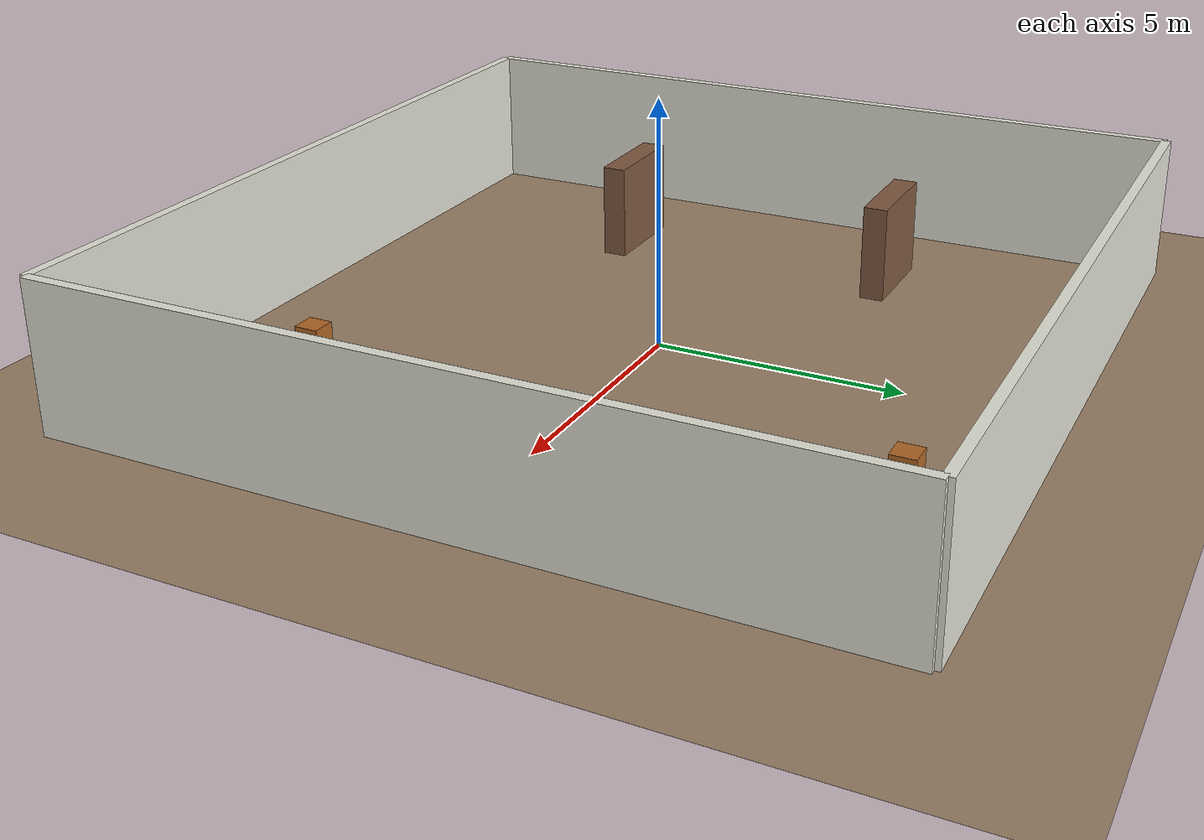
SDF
<?xml version="1.0" ?>
<sdf version="1.8">
  <world name="warehouse">

    <!-- Physics -->
    <physics name="1ms" type="ignored">
      <max_step_size>0.001</max_step_size>
      <real_time_factor>1.0</real_time_factor>
    </physics>

    <!-- Plugins -->
    <plugin
      filename="ignition-gazebo-physics-system"
      name="ignition::gazebo::systems::Physics">
    </plugin>
    <plugin
      filename="ignition-gazebo-user-commands-system"
      name="ignition::gazebo::systems::UserCommands">
    </plugin>
    <plugin
      filename="ignition-gazebo-scene-broadcaster-system"
      name="ignition::gazebo::systems::SceneBroadcaster">
    </plugin>
    <plugin
      filename="ignition-gazebo-sensors-system"
      name="ignition::gazebo::systems::Sensors">
      <render_engine>ogre2</render_engine>
    </plugin>
    <plugin
      filename="ignition-gazebo-imu-system"
      name="ignition::gazebo::systems::Imu">
    </plugin>

    <!-- Scene -->
    <scene>
      <ambient>0.6 0.6 0.6 1.0</ambient>
      <background>0.8 0.8 0.8 1</background>
      <shadows>true</shadows>
    </scene>

    <!-- Lighting -->
    <light type="directional" name="sun">
      <cast_shadows>true</cast_shadows>
      <pose>5 5 10 0 0 0</pose>
      <diffuse>0.9 0.9 0.9 1</diffuse>
      <specular>0.3 0.3 0.3 1</specular>
      <direction>-0.5 -0.5 -0.9</direction>
    </light>

    <!-- Additional ambient light -->
    <light type="directional" name="ambient_light">
      <cast_shadows>false</cast_shadows>
      <pose>-5 -5 8 0 0 0</pose>
      <diffuse>0.4 0.4 0.4 1</diffuse>
      <specular>0.1 0.1 0.1 1</specular>
      <direction>0.5 0.5 -0.7</direction>
    </light>

    <!-- Wooden warehouse floor -->
    <model name="ground_plane">
      <static>true</static>
      <link name="link">
        <collision name="collision">
          <geometry>
            <plane>
              <normal>0 0 1</normal>
              <size>100 100</size>
            </plane>
          </geometry>
        </collision>
        <visual name="visual">
          <geometry>
            <plane>
              <normal>0 0 1</normal>
              <size>100 100</size>
            </plane>
          </geometry>
          <material>
            <ambient>0.6 0.5 0.4 1</ambient>
            <diffuse>0.6 0.5 0.4 1</diffuse>
            <specular>0.2 0.2 0.2 1</specular>
          </material>
        </visual>
      </link>
    </model>

    <!-- Warehouse Walls - Beige/Light color -->
    <!-- Wall - North -->
    <model name="wall_north">
      <pose>8 0 1.5 0 0 0</pose>
      <static>true</static>
      <link name="link">
        <collision name="collision">
          <geometry>
            <box>
              <size>0.2 16 3.0</size>
            </box>
          </geometry>
        </collision>
        <visual name="visual">
          <geometry>
            <box>
              <size>0.2 16 3.0</size>
            </box>
          </geometry>
          <material>
            <ambient>0.9 0.9 0.85 1</ambient>
            <diffuse>0.9 0.9 0.85 1</diffuse>
            <specular>0.1 0.1 0.1 1</specular>
          </material>
        </visual>
      </link>
    </model>

    <!-- Wall - South -->
    <model name="wall_south">
      <pose>-8 0 1.5 0 0 0</pose>
      <static>true</static>
      <link name="link">
        <collision name="collision">
          <geometry>
            <box>
              <size>0.2 16 3.0</size>
            </box>
          </geometry>
        </collision>
        <visual name="visual">
          <geometry>
            <box>
              <size>0.2 16 3.0</size>
            </box>
          </geometry>
          <material>
            <ambient>0.9 0.9 0.85 1</ambient>
            <diffuse>0.9 0.9 0.85 1</diffuse>
            <specular>0.1 0.1 0.1 1</specular>
          </material>
        </visual>
      </link>
    </model>

    <!-- Wall - East -->
    <model name="wall_east">
      <pose>0 8 1.5 0 0 1.5708</pose>
      <static>true</static>
      <link name="link">
        <collision name="collision">
          <geometry>
            <box>
              <size>0.2 16 3.0</size>
            </box>
          </geometry>
        </collision>
        <visual name="visual">
          <geometry>
            <box>
              <size>0.2 16 3.0</size>
            </box>
          </geometry>
          <material>
            <ambient>0.9 0.9 0.85 1</ambient>
            <diffuse>0.9 0.9 0.85 1</diffuse>
            <specular>0.1 0.1 0.1 1</specular>
          </material>
        </visual>
      </link>
    </model>

    <!-- Wall - West -->
    <model name="wall_west">
      <pose>0 -8 1.5 0 0 1.5708</pose>
      <static>true</static>
      <link name="link">
        <collision name="collision">
          <geometry>
            <box>
              <size>0.2 16 3.0</size>
            </box>
          </geometry>
        </collision>
        <visual name="visual">
          <geometry>
            <box>
              <size>0.2 16 3.0</size>
            </box>
          </geometry>
          <material>
            <ambient>0.9 0.9 0.85 1</ambient>
            <diffuse>0.9 0.9 0.85 1</diffuse>
            <specular>0.1 0.1 0.1 1</specular>
          </material>
        </visual>
      </link>
    </model>

    <!-- Warehouse Bins/Shelves -->
    <!-- Orange Storage Bin 1 -->
    <model name="storage_bin_1">
      <pose>5 4 0.4 0 0 0</pose>
      <static>true</static>
      <link name="link">
        <collision name="collision">
          <geometry>
            <box>
              <size>1.2 0.8 0.8</size>
            </box>
          </geometry>
        </collision>
        <visual name="visual">
          <geometry>
            <box>
              <size>1.2 0.8 0.8</size>
            </box>
          </geometry>
          <material>
            <ambient>0.8 0.4 0.1 1</ambient>
            <diffuse>0.9 0.5 0.2 1</diffuse>
            <specular>0.2 0.2 0.2 1</specular>
          </material>
        </visual>
      </link>
    </model>

    <!-- Orange Storage Bin 2 -->
    <model name="storage_bin_2">
      <pose>5 -4 0.4 0 0 0</pose>
      <static>true</static>
      <link name="link">
        <collision name="collision">
          <geometry>
            <box>
              <size>1.2 0.8 0.8</size>
            </box>
          </geometry>
        </collision>
        <visual name="visual">
          <geometry>
            <box>
              <size>1.2 0.8 0.8</size>
            </box>
          </geometry>
          <material>
            <ambient>0.8 0.4 0.1 1</ambient>
            <diffuse>0.9 0.5 0.2 1</diffuse>
            <specular>0.2 0.2 0.2 1</specular>
          </material>
        </visual>
      </link>
    </model>

    <!-- Brown Shelving Unit 1 -->
    <model name="shelf_1">
      <pose>-5 3 1.0 0 0 0</pose>
      <static>true</static>
      <link name="link">
        <collision name="collision">
          <geometry>
            <box>
              <size>2.0 0.5 2.0</size>
            </box>
          </geometry>
        </collision>
        <visual name="visual">
          <geometry>
            <box>
              <size>2.0 0.5 2.0</size>
            </box>
          </geometry>
          <material>
            <ambient>0.4 0.3 0.2 1</ambient>
            <diffuse>0.5 0.35 0.25 1</diffuse>
            <specular>0.1 0.1 0.1 1</specular>
          </material>
        </visual>
      </link>
    </model>

    <!-- Brown Shelving Unit 2 -->
    <model name="shelf_2">
      <pose>-5 -3 1.0 0 0 0</pose>
      <static>true</static>
      <link name="link">
        <collision name="collision">
          <geometry>
            <box>
              <size>2.0 0.5 2.0</size>
            </box>
          </geometry>
        </collision>
        <visual name="visual">
          <geometry>
            <box>
              <size>2.0 0.5 2.0</size>
            </box>
          </geometry>
          <material>
            <ambient>0.4 0.3 0.2 1</ambient>
            <diffuse>0.5 0.35 0.25 1</diffuse>
            <specular>0.1 0.1 0.1 1</specular>
          </material>
        </visual>
      </link>
    </model>

    <!-- Additional Storage Boxes -->
    <model name="box_1">
      <pose>3 6 0.25 0 0 0</pose>
      <static>true</static>
      <link name="link">
        <collision name="collision">
          <geometry>
            <box>
              <size>0.5 0.5 0.5</size>
            </box>
          </geometry>
        </collision>
        <visual name="visual">
          <geometry>
            <box>
              <size>0.5 0.5 0.5</size>
            </box>
          </geometry>
          <material>
            <ambient>0.6 0.3 0.1 1</ambient>
            <diffuse>0.7 0.4 0.15 1</diffuse>
            <specular>0.1 0.1 0.1 1</specular>
          </material>
        </visual>
      </link>
    </model>

    <model name="box_2">
      <pose>3 -6 0.25 0 0 0</pose>
      <static>true</static>
      <link name="link">
        <collision name="collision">
          <geometry>
            <box>
              <size>0.5 0.5 0.5</size>
            </box>
          </geometry>
        </collision>
        <visual name="visual">
          <geometry>
            <box>
              <size>0.5 0.5 0.5</size>
            </box>
          </geometry>
          <material>
            <ambient>0.6 0.3 0.1 1</ambient>
            <diffuse>0.7 0.4 0.15 1</diffuse>
            <specular>0.1 0.1 0.1 1</specular>
          </material>
        </visual>
      </link>
    </model>

  </world>
</sdf>
